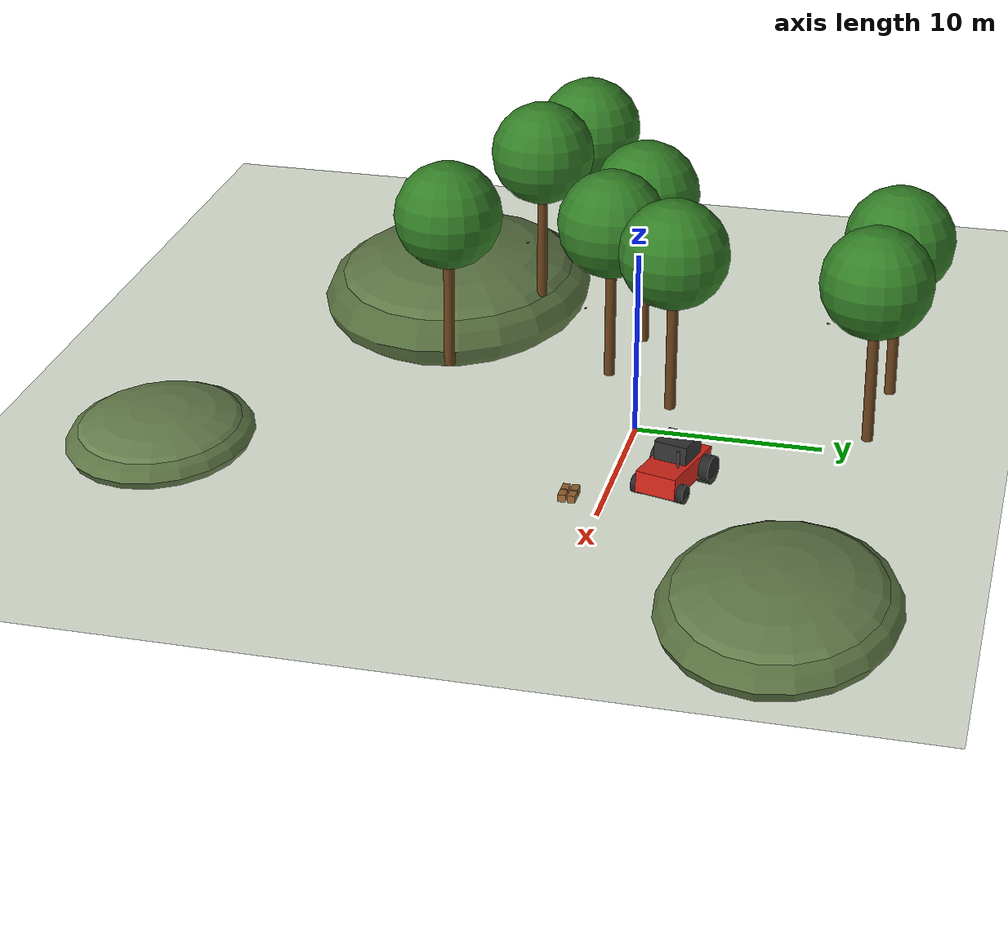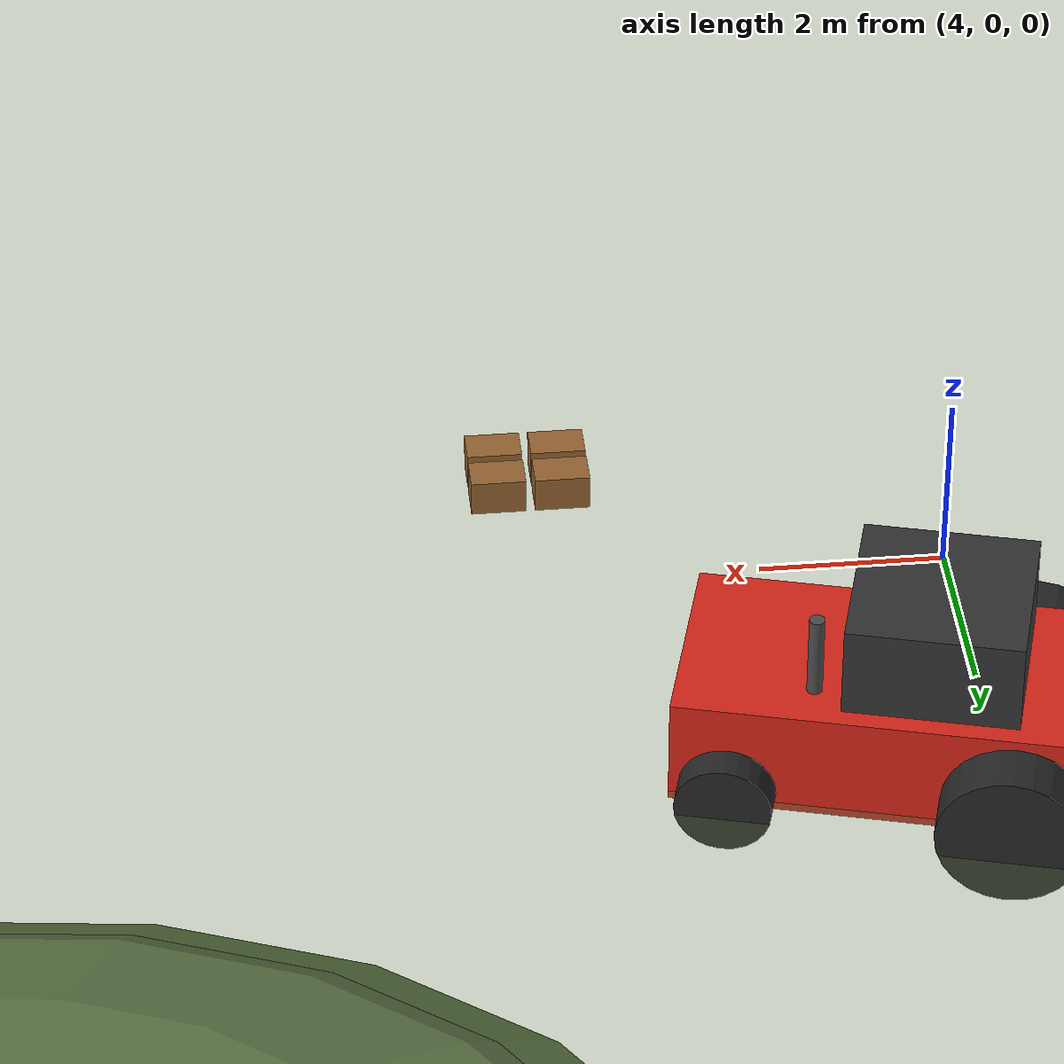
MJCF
<mujoco model="nature_demo">
  <compiler angle="degree" coordinate="local"/>
  <option timestep="0.002" iterations="50" solver="Newton" integrator="implicitfast" gravity="0 0 -9.81"/>
  <visual>
    <headlight diffuse="0.6 0.6 0.6" ambient="0.3 0.3 0.3"/>
  </visual>
  <asset>
    <texture name="grid" type="2d" builtin="checker" width="512" height="512" rgb1="0.2 0.3 0.4" rgb2="0.1 0.2 0.3"/>
    <material name="grid_mat" texture="grid" texrepeat="8 8" reflectance="0.2"/>
  </asset>
  <worldbody>
    <light name="sun" pos="0 0 30" dir="0.4 0.3 -1" diffuse="1 0.95 0.85" specular="0.5 0.5 0.5" directional="true"/>
    <body name="env_terrain" pos="0 0 0">
      <geom name="env_terrain_terrain_base" type="plane" size="50 50 0.1" rgba="0.35 0.45 0.25 1"/>
      <geom name="env_terrain_hill_1" type="ellipsoid" size="8 6 2" pos="15 10 -1" rgba="0.4 0.5 0.3 1"/>
      <geom name="env_terrain_hill_2" type="ellipsoid" size="10 8 3" pos="-20 -15 -1.5" rgba="0.38 0.48 0.28 1"/>
      <geom name="env_terrain_hill_3" type="ellipsoid" size="6 5 1.5" pos="5 -25 -0.8" rgba="0.42 0.52 0.32 1"/>
    </body>
    <body name="farm_tractor_0" pos="5 3 0.5" euler="0 0 -15">
      <geom name="farm_tractor_0_chassis" type="box" size="2.2 1.1 0.6" rgba="0.85 0.15 0.1 1" mass="1200"/>
      <geom name="farm_tractor_0_cabin" type="box" size="0.9 0.9 0.7" pos="-0.4 0 0.9" rgba="0.2 0.2 0.2 1" mass="300"/>
      <geom name="farm_tractor_0_hood" type="box" size="1.0 0.8 0.3" pos="1.2 0 0.2" rgba="0.85 0.15 0.1 1" mass="100"/>
      <geom name="farm_tractor_0_exhaust" type="cylinder" size="0.08 0.5" pos="0.8 0.6 1.0" rgba="0.3 0.3 0.3 1"/>
      <geom name="farm_tractor_0_wheel_fl" type="cylinder" size="0.5 0.25" pos="1.6 1.2 -0.4" euler="90 0 0" rgba="0.15 0.15 0.15 1"/>
      <geom name="farm_tractor_0_wheel_fr" type="cylinder" size="0.5 0.25" pos="1.6 -1.2 -0.4" euler="90 0 0" rgba="0.15 0.15 0.15 1"/>
      <geom name="farm_tractor_0_wheel_rl" type="cylinder" size="0.75 0.35" pos="-1.3 1.3 -0.25" euler="90 0 0" rgba="0.15 0.15 0.15 1"/>
      <geom name="farm_tractor_0_wheel_rr" type="cylinder" size="0.75 0.35" pos="-1.3 -1.3 -0.25" euler="90 0 0" rgba="0.15 0.15 0.15 1"/>
    </body>
    <body name="forest_0" pos="-11.52 -1.822 0" euler="0 0 99.01">
      <geom name="forest_0_tree_trunk" type="cylinder" size="0.3 4" pos="0 0 4" rgba="0.4 0.25 0.1 1"/>
      <geom name="forest_0_tree_foliage" type="sphere" size="3" pos="0 0 9" rgba="0.2 0.5 0.15 1"/>
    </body>
    <body name="forest_1" pos="-7.843 12.69 0" euler="0 0 243.6">
      <geom name="forest_1_tree_trunk" type="cylinder" size="0.3 4" pos="0 0 4" rgba="0.4 0.25 0.1 1"/>
      <geom name="forest_1_tree_foliage" type="sphere" size="3" pos="0 0 9" rgba="0.2 0.5 0.15 1"/>
    </body>
    <body name="forest_2" pos="-6.554 -2.772 0" euler="0 0 151.9">
      <geom name="forest_2_tree_trunk" type="cylinder" size="0.3 4" pos="0 0 4" rgba="0.4 0.25 0.1 1"/>
      <geom name="forest_2_tree_foliage" type="sphere" size="3" pos="0 0 9" rgba="0.2 0.5 0.15 1"/>
    </body>
    <body name="forest_3" pos="-3.109 1.305 0" euler="0 0 181.9">
      <geom name="forest_3_tree_trunk" type="cylinder" size="0.3 4" pos="0 0 4" rgba="0.4 0.25 0.1 1"/>
      <geom name="forest_3_tree_foliage" type="sphere" size="3" pos="0 0 9" rgba="0.2 0.5 0.15 1"/>
    </body>
    <body name="forest_4" pos="-16.52 -8.954 0" euler="0 0 79.36">
      <geom name="forest_4_tree_trunk" type="cylinder" size="0.3 4" pos="0 0 4" rgba="0.4 0.25 0.1 1"/>
      <geom name="forest_4_tree_foliage" type="sphere" size="3" pos="0 0 9" rgba="0.2 0.5 0.15 1"/>
    </body>
    <body name="forest_5" pos="-21.43 -7.178 0" euler="0 0 2.34">
      <geom name="forest_5_tree_trunk" type="cylinder" size="0.3 4" pos="0 0 4" rgba="0.4 0.25 0.1 1"/>
      <geom name="forest_5_tree_foliage" type="sphere" size="3" pos="0 0 9" rgba="0.2 0.5 0.15 1"/>
    </body>
    <body name="forest_6" pos="-5.694 -11.77 0" euler="0 0 122.5">
      <geom name="forest_6_tree_trunk" type="cylinder" size="0.3 4" pos="0 0 4" rgba="0.4 0.25 0.1 1"/>
      <geom name="forest_6_tree_foliage" type="sphere" size="3" pos="0 0 9" rgba="0.2 0.5 0.15 1"/>
    </body>
    <body name="forest_7" pos="-1.788 12.16 0" euler="0 0 121.2">
      <geom name="forest_7_tree_trunk" type="cylinder" size="0.3 4" pos="0 0 4" rgba="0.4 0.25 0.1 1"/>
      <geom name="forest_7_tree_foliage" type="sphere" size="3" pos="0 0 9" rgba="0.2 0.5 0.15 1"/>
    </body>
    <body name="birds_0" pos="-1.215 -1.458 8" euler="0 0 99.01">
      <geom name="birds_0_bird_body" type="ellipsoid" size="0.08 0.04 0.035" rgba="0.6 0.4 0.2 1" mass="0.05"/>
      <geom name="birds_0_bird_head" type="sphere" size="0.025" pos="0.07 0 0.01" rgba="0.5 0.35 0.2 1"/>
      <geom name="birds_0_bird_beak" type="box" size="0.015 0.005 0.003" pos="0.095 0 0.01" rgba="0.9 0.6 0.1 1"/>
    </body>
    <body name="birds_1" pos="1.725 10.15 8" euler="0 0 243.6">
      <geom name="birds_1_bird_body" type="ellipsoid" size="0.08 0.04 0.035" rgba="0.6 0.4 0.2 1" mass="0.05"/>
      <geom name="birds_1_bird_head" type="sphere" size="0.025" pos="0.07 0 0.01" rgba="0.5 0.35 0.2 1"/>
      <geom name="birds_1_bird_beak" type="box" size="0.015 0.005 0.003" pos="0.095 0 0.01" rgba="0.9 0.6 0.1 1"/>
    </body>
    <body name="birds_2" pos="2.757 -2.218 8" euler="0 0 151.9">
      <geom name="birds_2_bird_body" type="ellipsoid" size="0.08 0.04 0.035" rgba="0.6 0.4 0.2 1" mass="0.05"/>
      <geom name="birds_2_bird_head" type="sphere" size="0.025" pos="0.07 0 0.01" rgba="0.5 0.35 0.2 1"/>
      <geom name="birds_2_bird_beak" type="box" size="0.015 0.005 0.003" pos="0.095 0 0.01" rgba="0.9 0.6 0.1 1"/>
    </body>
    <body name="birds_3" pos="5.513 1.044 8" euler="0 0 181.9">
      <geom name="birds_3_bird_body" type="ellipsoid" size="0.08 0.04 0.035" rgba="0.6 0.4 0.2 1" mass="0.05"/>
      <geom name="birds_3_bird_head" type="sphere" size="0.025" pos="0.07 0 0.01" rgba="0.5 0.35 0.2 1"/>
      <geom name="birds_3_bird_beak" type="box" size="0.015 0.005 0.003" pos="0.095 0 0.01" rgba="0.9 0.6 0.1 1"/>
    </body>
    <body name="birds_4" pos="-5.212 -7.163 8" euler="0 0 79.36">
      <geom name="birds_4_bird_body" type="ellipsoid" size="0.08 0.04 0.035" rgba="0.6 0.4 0.2 1" mass="0.05"/>
      <geom name="birds_4_bird_head" type="sphere" size="0.025" pos="0.07 0 0.01" rgba="0.5 0.35 0.2 1"/>
      <geom name="birds_4_bird_beak" type="box" size="0.015 0.005 0.003" pos="0.095 0 0.01" rgba="0.9 0.6 0.1 1"/>
    </body>
    <body name="supplies_r0_c0" pos="8 -2 0.2">
      <geom name="supplies_r0_c0_crate" type="box" size="0.3 0.2 0.2" rgba="0.6 0.4 0.2 1" mass="10"/>
    </body>
    <body name="supplies_r0_c1" pos="8.7 -2 0.2">
      <geom name="supplies_r0_c1_crate" type="box" size="0.3 0.2 0.2" rgba="0.6 0.4 0.2 1" mass="10"/>
    </body>
    <body name="supplies_r1_c0" pos="8 -1.5 0.2">
      <geom name="supplies_r1_c0_crate" type="box" size="0.3 0.2 0.2" rgba="0.6 0.4 0.2 1" mass="10"/>
    </body>
    <body name="supplies_r1_c1" pos="8.7 -1.5 0.2">
      <geom name="supplies_r1_c1_crate" type="box" size="0.3 0.2 0.2" rgba="0.6 0.4 0.2 1" mass="10"/>
    </body>
    <camera name="overview" pos="25 25 20" fovy="50.0" euler="0 26.98 -135"/>
    <camera name="ground_level" pos="12 0 2" fovy="60.0" euler="0 -14.04 180"/>
  </worldbody>
</mujoco>
